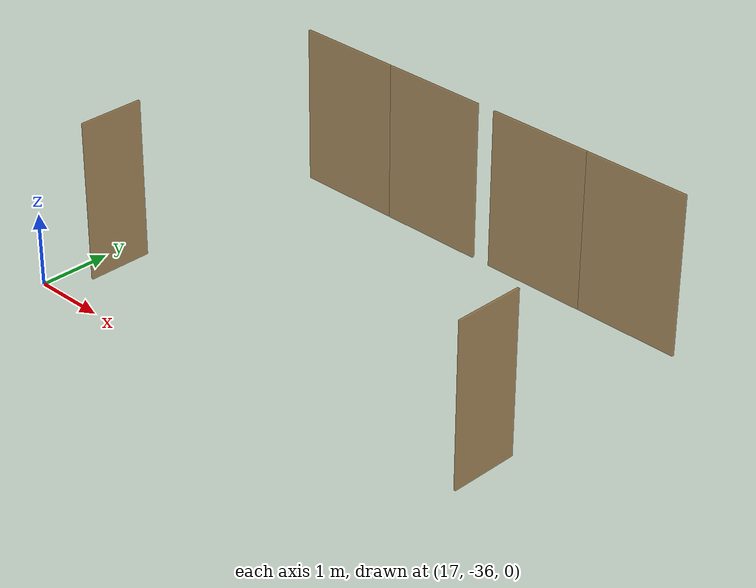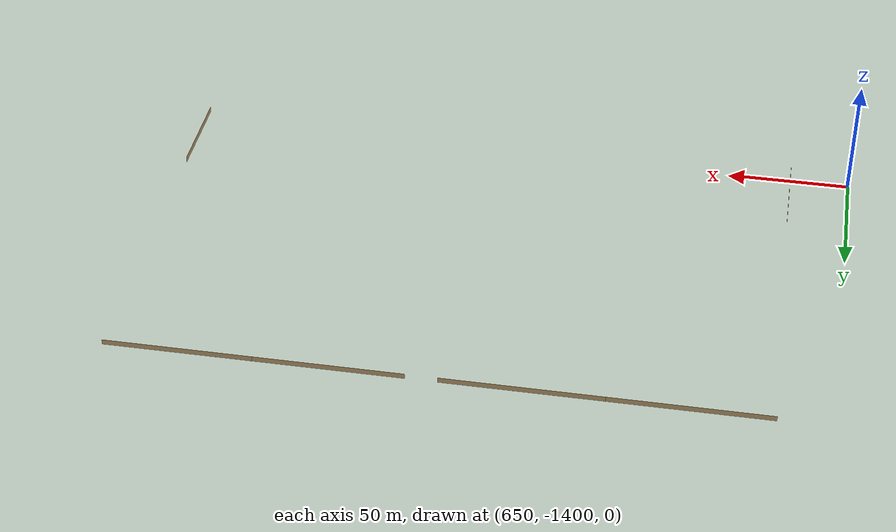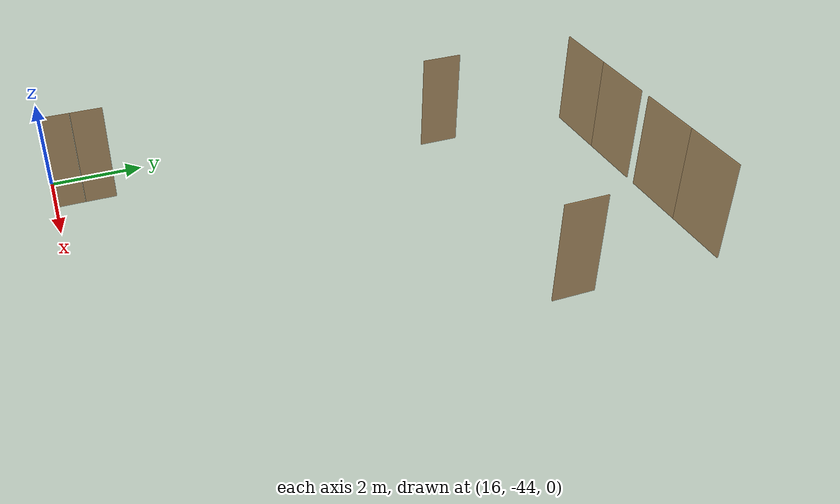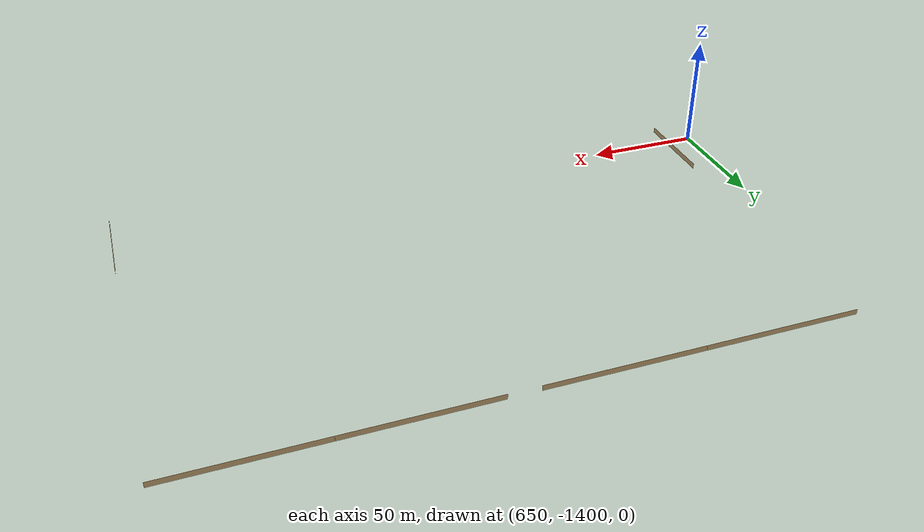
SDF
<sdf version="1.7">
 <world name="sim_world">
  <physics name="10ms" type="ode">
   <max_step_size>0.01</max_step_size>
   <real_time_factor>1.0</real_time_factor>
  </physics>
  <plugin filename="gz-sim-physics-system" name="gz::sim::systems::Physics"/>
  <plugin filename="gz-sim-user-commands-system" name="gz::sim::systems::UserCommands"/>
  <plugin filename="gz-sim-scene-broadcaster-system" name="gz::sim::systems::SceneBroadcaster"/>
  <plugin filename="libdoor.so" name="door"/>
  <plugin filename="liblift.so" name="lift"/>
  <scene><ambient>1 1 1</ambient><background>0.8 0.8 0.8</background><grid>false</grid></scene>
  <light type="directional" name="sun">
   <pose>0 0 10 0 0 0</pose>
   <diffuse>1 1 1 1</diffuse>
   <specular>0.2 0.2 0.2 1</specular>
   <attenuation>
    <range>1000</range>
    <constant>0.09</constant>
    <linear>0.001</linear>
    <quadratic>0.001</quadratic>
   </attenuation>
   <direction>-0.5 0.1 -0.9</direction>
  </light>
  <model name="door1">
   <pose>18.859094387755107 -31.709056122448985 0.0 0 0 3.141592653589793</pose>
   <link name="right">
    <pose>0.7511288265306124 0 1.11 0 0 0</pose>
    <visual name="right_visual">
     <geometry><box><size>1.4922576530612248 0.03 2.2</size></box></geometry>
     <material>
      <ambient>0.5 0.25 0 0.6</ambient>
      <diffuse>0.5 0.25 0 0.6</diffuse>
      <pbr><metal><metalness>0.0</metalness></metal></pbr>
     </material>
    </visual>
    <collision name="right_collision">
     <geometry><box><size>1.4922576530612248 0.03 2.2</size></box></geometry>
     <surface><contact><collide_bitmask>0x02</collide_bitmask></contact></surface>
    </collision>
    <inertial>
     <mass>50.0</mass>
     <inertia><ixx>20.17041666666667</ixx><iyy>29.445137096332484</iyy><izz>9.282220429665813</izz></inertia>
    </inertial>
   </link>
   <joint name="right_joint" type="revolute">
    <parent>world</parent>
    <child>right</child>
    <axis><xyz>0 0 -1</xyz><limit><lower>0</lower><upper>1.57</upper></limit></axis>
    <pose>0.7511288265306124 0 0 0 0 0</pose>
   </joint>
   <link name="left">
    <pose>-0.7511288265306124 0 1.11 0 0 0</pose>
    <visual name="left_visual">
     <geometry><box><size>1.4922576530612248 0.03 2.2</size></box></geometry>
     <material>
      <ambient>0.5 0.25 0 0.6</ambient>
      <diffuse>0.5 0.25 0 0.6</diffuse>
      <pbr><metal><metalness>0.0</metalness></metal></pbr>
     </material>
    </visual>
    <collision name="left_collision">
     <geometry><box><size>1.4922576530612248 0.03 2.2</size></box></geometry>
     <surface><contact><collide_bitmask>0x02</collide_bitmask></contact></surface>
    </collision>
    <inertial>
     <mass>50.0</mass>
     <inertia><ixx>20.17041666666667</ixx><iyy>29.445137096332484</iyy><izz>9.282220429665813</izz></inertia>
    </inertial>
   </link>
   <joint name="left_joint" type="revolute">
    <parent>world</parent>
    <child>left</child>
    <axis><xyz>0 0 -1</xyz><limit><lower>-1.57</lower><upper>0</upper></limit></axis>
    <pose>-0.7511288265306124 0 0 0 0 0</pose>
   </joint>
   <plugin name="register_component" filename="libregister_component.so">
    <component name="Door">
     <v_max_door>0.5</v_max_door>
     <a_max_door>0.3</a_max_door>
     <a_nom_door>0.15</a_nom_door>
     <dx_min_door>0.01</dx_min_door>
     <f_max_door>500.0</f_max_door>
     <ros_interface>true</ros_interface>
     <door name="door1" type="DoubleSwingDoor" left_joint_name="left_joint" right_joint_name="right_joint"/>
    </component>
   </plugin>
  </model>
  <model name="door2">
   <pose>17.345918367346943 -35.05772959183675 0.0 0 0 1.5707963267948966</pose>
   <link name="right">
    <pose>0 0 1.11 0 0 0</pose>
    <visual name="right_visual">
     <geometry><box><size>0.9003061224489792 0.03 2.2</size></box></geometry>
     <material>
      <ambient>0.5 0.25 0 0.6</ambient>
      <diffuse>0.5 0.25 0 0.6</diffuse>
      <pbr><metal><metalness>0.0</metalness></metal></pbr>
     </material>
    </visual>
    <collision name="right_collision">
     <geometry><box><size>0.9003061224489792 0.03 2.2</size></box></geometry>
     <surface><contact><collide_bitmask>0x02</collide_bitmask></contact></surface>
    </collision>
    <inertial>
     <mass>50.0</mass>
     <inertia><ixx>20.17041666666667</ixx><iyy>23.54396297549632</iyy><izz>3.381046308829652</izz></inertia>
    </inertial>
   </link>
   <joint name="right_joint" type="revolute">
    <parent>world</parent>
    <child>right</child>
    <axis><xyz>0 0 1</xyz><limit><lower>0</lower><upper>1.57</upper></limit></axis>
    <pose>0.4551530612244896 0 0 0 0 0</pose>
   </joint>
   <plugin name="register_component" filename="libregister_component.so">
    <component name="Door">
     <v_max_door>0.5</v_max_door>
     <a_max_door>0.3</a_max_door>
     <a_nom_door>0.15</a_nom_door>
     <dx_min_door>0.01</dx_min_door>
     <f_max_door>500.0</f_max_door>
     <ros_interface>true</ros_interface>
     <door name="door2" type="SwingDoor" left_joint_name="empty_joint" right_joint_name="right_joint"/>
    </component>
   </plugin>
  </model>
  <model name="door3">
   <pose>23.58721938775511 -35.04910714285715 0.0 0 0 1.5707963267948966</pose>
   <link name="right">
    <pose>0 0 1.11 0 0 0</pose>
    <visual name="right_visual">
     <geometry><box><size>0.9289795918367341 0.03 2.2</size></box></geometry>
     <material>
      <ambient>0.5 0.25 0 0.6</ambient>
      <diffuse>0.5 0.25 0 0.6</diffuse>
      <pbr><metal><metalness>0.0</metalness></metal></pbr>
     </material>
    </visual>
    <collision name="right_collision">
     <geometry><box><size>0.9289795918367341 0.03 2.2</size></box></geometry>
     <surface><contact><collide_bitmask>0x02</collide_bitmask></contact></surface>
    </collision>
    <inertial>
     <mass>50.0</mass>
     <inertia><ixx>20.17041666666667</ixx><iyy>23.762512841871445</iyy><izz>3.599596175204771</izz></inertia>
    </inertial>
   </link>
   <joint name="right_joint" type="prismatic">
    <parent>world</parent>
    <child>right</child>
    <axis>
     <xyz>1 0 0</xyz>
     <limit><lower>0.0</lower><upper>0.9389795918367341</upper><effort>500.0</effort></limit>
    </axis>
   </joint>
   <plugin name="register_component" filename="libregister_component.so">
    <component name="Door">
     <v_max_door>0.2</v_max_door>
     <a_max_door>0.2</a_max_door>
     <a_nom_door>0.08</a_nom_door>
     <dx_min_door>0.001</dx_min_door>
     <f_max_door>100.0</f_max_door>
     <ros_interface>true</ros_interface>
     <door name="door3" type="SlidingDoor" left_joint_name="empty_joint" right_joint_name="right_joint"/>
    </component>
   </plugin>
  </model>
  <model name="door4">
   <pose>16.988928571428577 -43.36737244897961 0.0 0 0 1.5707963267948966</pose>
   <link name="right">
    <pose>0.338354591836735 0 1.11 0 0 0</pose>
    <visual name="right_visual">
     <geometry><box><size>0.66670918367347 0.03 2.2</size></box></geometry>
     <material>
      <ambient>0.5 0.25 0 0.6</ambient>
      <diffuse>0.5 0.25 0 0.6</diffuse>
      <pbr><metal><metalness>0.0</metalness></metal></pbr>
     </material>
    </visual>
    <collision name="right_collision">
     <geometry><box><size>0.66670918367347 0.03 2.2</size></box></geometry>
     <surface><contact><collide_bitmask>0x02</collide_bitmask></contact></surface>
    </collision>
    <inertial>
     <mass>50.0</mass>
     <inertia><ixx>20.17041666666667</ixx><iyy>22.01875473164394</iyy><izz>1.8558380649772699</izz></inertia>
    </inertial>
   </link>
   <joint name="right_joint" type="revolute">
    <parent>world</parent>
    <child>right</child>
    <axis><xyz>0 0 1</xyz><limit><lower>0</lower><upper>1.57</upper></limit></axis>
    <pose>0.338354591836735 0 0 0 0 0</pose>
   </joint>
   <link name="left">
    <pose>-0.338354591836735 0 1.11 0 0 0</pose>
    <visual name="left_visual">
     <geometry><box><size>0.66670918367347 0.03 2.2</size></box></geometry>
     <material>
      <ambient>0.5 0.25 0 0.6</ambient>
      <diffuse>0.5 0.25 0 0.6</diffuse>
      <pbr><metal><metalness>0.0</metalness></metal></pbr>
     </material>
    </visual>
    <collision name="left_collision">
     <geometry><box><size>0.66670918367347 0.03 2.2</size></box></geometry>
     <surface><contact><collide_bitmask>0x02</collide_bitmask></contact></surface>
    </collision>
    <inertial>
     <mass>50.0</mass>
     <inertia><ixx>20.17041666666667</ixx><iyy>22.01875473164394</iyy><izz>1.8558380649772699</izz></inertia>
    </inertial>
   </link>
   <joint name="left_joint" type="revolute">
    <parent>world</parent>
    <child>left</child>
    <axis><xyz>0 0 1</xyz><limit><lower>-1.57</lower><upper>0</upper></limit></axis>
    <pose>-0.338354591836735 0 0 0 0 0</pose>
   </joint>
   <plugin name="register_component" filename="libregister_component.so">
    <component name="Door">
     <v_max_door>0.5</v_max_door>
     <a_max_door>0.3</a_max_door>
     <a_nom_door>0.15</a_nom_door>
     <dx_min_door>0.01</dx_min_door>
     <f_max_door>500.0</f_max_door>
     <ros_interface>true</ros_interface>
     <door name="door4" type="DoubleSwingDoor" left_joint_name="left_joint" right_joint_name="right_joint"/>
    </component>
   </plugin>
  </model>
  <model name="door5">
   <pose>22.107627551020414 -31.709056122448985 0.0 0 0 3.141592653589793</pose>
   <link name="right">
    <pose>0.7452295918367344 0 1.11 0 0 0</pose>
    <visual name="right_visual">
     <geometry><box><size>1.4804591836734688 0.03 2.2</size></box></geometry>
     <material>
      <ambient>0.5 0.25 0 0.6</ambient>
      <diffuse>0.5 0.25 0 0.6</diffuse>
      <pbr><metal><metalness>0.0</metalness></metal></pbr>
     </material>
    </visual>
    <collision name="right_collision">
     <geometry><box><size>1.4804591836734688 0.03 2.2</size></box></geometry>
     <surface><contact><collide_bitmask>0x02</collide_bitmask></contact></surface>
    </collision>
    <inertial>
     <mass>50.0</mass>
     <inertia><ixx>20.17041666666667</ixx><iyy>29.298997477179647</iyy><izz>9.136080810512976</izz></inertia>
    </inertial>
   </link>
   <joint name="right_joint" type="revolute">
    <parent>world</parent>
    <child>right</child>
    <axis><xyz>0 0 -1</xyz><limit><lower>0</lower><upper>1.57</upper></limit></axis>
    <pose>0.7452295918367344 0 0 0 0 0</pose>
   </joint>
   <link name="left">
    <pose>-0.7452295918367344 0 1.11 0 0 0</pose>
    <visual name="left_visual">
     <geometry><box><size>1.4804591836734688 0.03 2.2</size></box></geometry>
     <material>
      <ambient>0.5 0.25 0 0.6</ambient>
      <diffuse>0.5 0.25 0 0.6</diffuse>
      <pbr><metal><metalness>0.0</metalness></metal></pbr>
     </material>
    </visual>
    <collision name="left_collision">
     <geometry><box><size>1.4804591836734688 0.03 2.2</size></box></geometry>
     <surface><contact><collide_bitmask>0x02</collide_bitmask></contact></surface>
    </collision>
    <inertial>
     <mass>50.0</mass>
     <inertia><ixx>20.17041666666667</ixx><iyy>29.298997477179647</iyy><izz>9.136080810512976</izz></inertia>
    </inertial>
   </link>
   <joint name="left_joint" type="revolute">
    <parent>world</parent>
    <child>left</child>
    <axis><xyz>0 0 -1</xyz><limit><lower>-1.57</lower><upper>0</upper></limit></axis>
    <pose>-0.7452295918367344 0 0 0 0 0</pose>
   </joint>
   <plugin name="register_component" filename="libregister_component.so">
    <component name="Door">
     <v_max_door>0.5</v_max_door>
     <a_max_door>0.3</a_max_door>
     <a_nom_door>0.15</a_nom_door>
     <dx_min_door>0.01</dx_min_door>
     <f_max_door>500.0</f_max_door>
     <ros_interface>true</ros_interface>
     <door name="door5" type="DoubleSwingDoor" left_joint_name="left_joint" right_joint_name="right_joint"/>
    </component>
   </plugin>
  </model>
  <model name="door6">
   <pose>734.2375 -1243.013 12.0 0 0 3.141592653589793</pose>
   <link name="right">
    <pose>30.82775000000001 0 1.11 0 0 0</pose>
    <visual name="right_visual">
     <geometry><box><size>61.64550000000002 0.03 2.2</size></box></geometry>
     <material>
      <ambient>0.5 0.25 0 0.6</ambient>
      <diffuse>0.5 0.25 0 0.6</diffuse>
      <pbr><metal><metalness>0.0</metalness></metal></pbr>
     </material>
    </visual>
    <collision name="right_collision">
     <geometry><box><size>61.64550000000002 0.03 2.2</size></box></geometry>
     <surface><contact><collide_bitmask>0x02</collide_bitmask></contact></surface>
    </collision>
    <inertial>
     <mass>50.0</mass>
     <inertia><ixx>20.17041666666667</ixx><iyy>15854.19862604168</iyy><izz>15834.035709375012</izz></inertia>
    </inertial>
   </link>
   <joint name="right_joint" type="revolute">
    <parent>world</parent>
    <child>right</child>
    <axis><xyz>0 0 -1</xyz><limit><lower>0</lower><upper>1.57</upper></limit></axis>
    <pose>30.82775000000001 0 0 0 0 0</pose>
   </joint>
   <link name="left">
    <pose>-30.82775000000001 0 1.11 0 0 0</pose>
    <visual name="left_visual">
     <geometry><box><size>61.64550000000002 0.03 2.2</size></box></geometry>
     <material>
      <ambient>0.5 0.25 0 0.6</ambient>
      <diffuse>0.5 0.25 0 0.6</diffuse>
      <pbr><metal><metalness>0.0</metalness></metal></pbr>
     </material>
    </visual>
    <collision name="left_collision">
     <geometry><box><size>61.64550000000002 0.03 2.2</size></box></geometry>
     <surface><contact><collide_bitmask>0x02</collide_bitmask></contact></surface>
    </collision>
    <inertial>
     <mass>50.0</mass>
     <inertia><ixx>20.17041666666667</ixx><iyy>15854.19862604168</iyy><izz>15834.035709375012</izz></inertia>
    </inertial>
   </link>
   <joint name="left_joint" type="revolute">
    <parent>world</parent>
    <child>left</child>
    <axis><xyz>0 0 -1</xyz><limit><lower>-1.57</lower><upper>0</upper></limit></axis>
    <pose>-30.82775000000001 0 0 0 0 0</pose>
   </joint>
   <plugin name="register_component" filename="libregister_component.so">
    <component name="Door">
     <v_max_door>0.5</v_max_door>
     <a_max_door>0.3</a_max_door>
     <a_nom_door>0.15</a_nom_door>
     <dx_min_door>0.01</dx_min_door>
     <f_max_door>500.0</f_max_door>
     <ros_interface>true</ros_interface>
     <door name="door6" type="DoubleSwingDoor" left_joint_name="left_joint" right_joint_name="right_joint"/>
    </component>
   </plugin>
  </model>
  <model name="door7">
   <pose>865.6379999999999 -1243.013 12.0 0 0 3.141592653589793</pose>
   <link name="right">
    <pose>28.750500000000017 0 1.11 0 0 0</pose>
    <visual name="right_visual">
     <geometry><box><size>57.491000000000035 0.03 2.2</size></box></geometry>
     <material>
      <ambient>0.5 0.25 0 0.6</ambient>
      <diffuse>0.5 0.25 0 0.6</diffuse>
      <pbr><metal><metalness>0.0</metalness></metal></pbr>
     </material>
    </visual>
    <collision name="right_collision">
     <geometry><box><size>57.491000000000035 0.03 2.2</size></box></geometry>
     <surface><contact><collide_bitmask>0x02</collide_bitmask></contact></surface>
    </collision>
    <inertial>
     <mass>50.0</mass>
     <inertia><ixx>20.17041666666667</ixx><iyy>13791.896170833352</iyy><izz>13771.733254166684</izz></inertia>
    </inertial>
   </link>
   <joint name="right_joint" type="revolute">
    <parent>world</parent>
    <child>right</child>
    <axis><xyz>0 0 -1</xyz><limit><lower>0</lower><upper>1.57</upper></limit></axis>
    <pose>28.750500000000017 0 0 0 0 0</pose>
   </joint>
   <link name="left">
    <pose>-28.750500000000017 0 1.11 0 0 0</pose>
    <visual name="left_visual">
     <geometry><box><size>57.491000000000035 0.03 2.2</size></box></geometry>
     <material>
      <ambient>0.5 0.25 0 0.6</ambient>
      <diffuse>0.5 0.25 0 0.6</diffuse>
      <pbr><metal><metalness>0.0</metalness></metal></pbr>
     </material>
    </visual>
    <collision name="left_collision">
     <geometry><box><size>57.491000000000035 0.03 2.2</size></box></geometry>
     <surface><contact><collide_bitmask>0x02</collide_bitmask></contact></surface>
    </collision>
    <inertial>
     <mass>50.0</mass>
     <inertia><ixx>20.17041666666667</ixx><iyy>13791.896170833352</iyy><izz>13771.733254166684</izz></inertia>
    </inertial>
   </link>
   <joint name="left_joint" type="revolute">
    <parent>world</parent>
    <child>left</child>
    <axis><xyz>0 0 -1</xyz><limit><lower>-1.57</lower><upper>0</upper></limit></axis>
    <pose>-28.750500000000017 0 0 0 0 0</pose>
   </joint>
   <plugin name="register_component" filename="libregister_component.so">
    <component name="Door">
     <v_max_door>0.5</v_max_door>
     <a_max_door>0.3</a_max_door>
     <a_nom_door>0.15</a_nom_door>
     <dx_min_door>0.01</dx_min_door>
     <f_max_door>500.0</f_max_door>
     <ros_interface>true</ros_interface>
     <door name="door7" type="DoubleSwingDoor" left_joint_name="left_joint" right_joint_name="right_joint"/>
    </component>
   </plugin>
  </model>
  <model name="door8">
   <pose>924.039 -1375.3585 12.0 0 0 1.5707963267948966</pose>
   <link name="right">
    <pose>0 0 1.11 0 0 0</pose>
    <visual name="right_visual">
     <geometry><box><size>36.52099999999995 0.03 2.2</size></box></geometry>
     <material>
      <ambient>0.5 0.25 0 0.6</ambient>
      <diffuse>0.5 0.25 0 0.6</diffuse>
      <pbr><metal><metalness>0.0</metalness></metal></pbr>
     </material>
    </visual>
    <collision name="right_collision">
     <geometry><box><size>36.52099999999995 0.03 2.2</size></box></geometry>
     <surface><contact><collide_bitmask>0x02</collide_bitmask></contact></surface>
    </collision>
    <inertial>
     <mass>50.0</mass>
     <inertia><ixx>20.17041666666667</ixx><iyy>5577.597670833318</iyy><izz>5557.434754166652</izz></inertia>
    </inertial>
   </link>
   <joint name="right_joint" type="prismatic">
    <parent>world</parent>
    <child>right</child>
    <axis>
     <xyz>1 0 0</xyz>
     <limit><lower>0.0</lower><upper>36.53099999999995</upper><effort>500.0</effort></limit>
    </axis>
   </joint>
   <plugin name="register_component" filename="libregister_component.so">
    <component name="Door">
     <v_max_door>0.2</v_max_door>
     <a_max_door>0.2</a_max_door>
     <a_nom_door>0.08</a_nom_door>
     <dx_min_door>0.001</dx_min_door>
     <f_max_door>100.0</f_max_door>
     <ros_interface>true</ros_interface>
     <door name="door8" type="SlidingDoor" left_joint_name="empty_joint" right_joint_name="right_joint"/>
    </component>
   </plugin>
  </model>
  <model name="door9">
   <pose>674.5 -1373.8175 12.0 0 0 1.5707963267948966</pose>
   <link name="right">
    <pose>0 0 1.11 0 0 0</pose>
    <visual name="right_visual">
     <geometry><box><size>36.73700000000007 0.03 2.2</size></box></geometry>
     <material>
      <ambient>0.5 0.25 0 0.6</ambient>
      <diffuse>0.5 0.25 0 0.6</diffuse>
      <pbr><metal><metalness>0.0</metalness></metal></pbr>
     </material>
    </visual>
    <collision name="right_collision">
     <geometry><box><size>36.73700000000007 0.03 2.2</size></box></geometry>
     <surface><contact><collide_bitmask>0x02</collide_bitmask></contact></surface>
    </collision>
    <inertial>
     <mass>50.0</mass>
     <inertia><ixx>20.17041666666667</ixx><iyy>5643.529870833356</iyy><izz>5623.3669541666895</izz></inertia>
    </inertial>
   </link>
   <joint name="right_joint" type="revolute">
    <parent>world</parent>
    <child>right</child>
    <axis><xyz>0 0 1</xyz><limit><lower>0</lower><upper>1.57</upper></limit></axis>
    <pose>18.373500000000035 0 0 0 0 0</pose>
   </joint>
   <plugin name="register_component" filename="libregister_component.so">
    <component name="Door">
     <v_max_door>0.5</v_max_door>
     <a_max_door>0.3</a_max_door>
     <a_nom_door>0.15</a_nom_door>
     <dx_min_door>0.01</dx_min_door>
     <f_max_door>500.0</f_max_door>
     <ros_interface>true</ros_interface>
     <door name="door9" type="SwingDoor" left_joint_name="empty_joint" right_joint_name="right_joint"/>
    </component>
   </plugin>
  </model>
  <plugin name="register_component" filename="libregister_component.so">
   <component name="Chargers">
    <rmf_charger name="tinyRobot2_charger" x="17.26053571428572" y="-6.7249234693877575" z="0.0"/>
    <rmf_charger name="tinyRobot1_charger" x="14.841607142857148" y="-6.900178571428574" z="0.0"/>
   </component>
  </plugin>
 </world>
</sdf>
